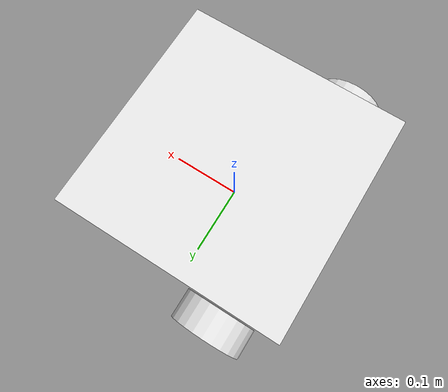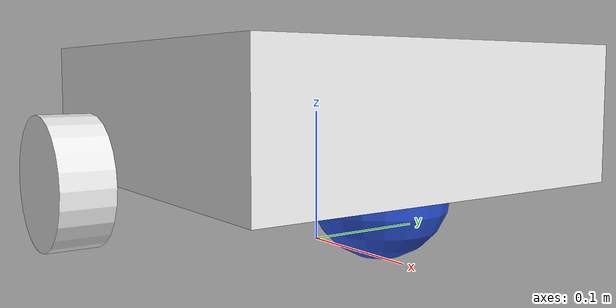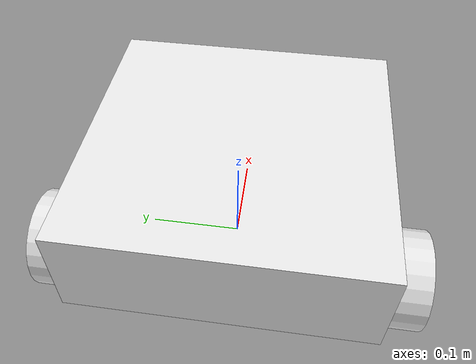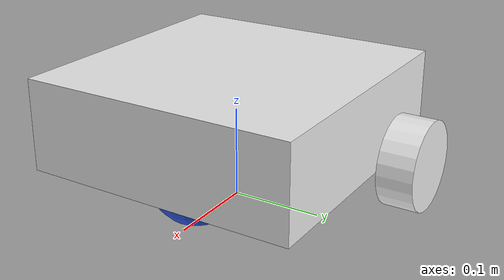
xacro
<?xml version="1.0"?>
<robot xmlns:xacro="http://www.ros.org/wiki/xacro">
    <xacro:property name="length" value="0.3"/>
    <xacro:property name="width" value="0.3"/>
    <xacro:property name="height" value="0.1"/>
    <xacro:property name="wheel_radius" value="0.05"/>
    <xacro:property name="wheel_width" value="0.04"/>
    <xacro:property name="caster_wheel_radius" value="0.05"/>

    <link name = "base_footprint"/>

    <link name = "base_link">
        <visual>
            <geometry>
                <box size = "${length} ${width} ${height}"/>
            </geometry>
            <material name = "white"/>
            <origin xyz = "0 0 ${wheel_radius}" rpy = "0 0 0"/>
        </visual>
        <collision>
            <geometry>
                <box size = "${length} ${width} ${height}"/>
            </geometry>
            <origin xyz = "0 0 ${wheel_radius}" rpy = "0 0 0"/>
        </collision>
        <xacro:box_inertia m = "0.5" x = "${length}" y = "${width}" z = "${height}"
                             o_xyz = "0 0 ${wheel_radius}" o_rpy = "0 0 0"/>
    </link>

    <link name ="left_wheel_link">
        <visual>
            <geometry>
                <cylinder radius = "${wheel_radius}" length = "${wheel_width}"/>
            </geometry>
            <material name = "white"/>
            <origin xyz = "0 0 0" rpy = "${pi/2} 0 0"/>
        </visual>
        <collision>
            <geometry>
                <cylinder radius = "${wheel_radius}" length = "${wheel_width}"/>
            </geometry>
            <origin xyz = "0 0 0" rpy = "${pi/2} 0 0"/>
        </collision>
        <xacro:cylinder_inertia m = "0.05" r = "${wheel_radius}" h = "${wheel_width}"
                             o_xyz = "0 0 0" o_rpy = "${pi/2} 0 0"/>
    </link>

    <gazebo reference="left_wheel_link">
        <material>Gazebo/White</material>
    </gazebo>

    <link name ="right_wheel_link">
        <visual>
            <geometry>
                <cylinder radius = "${wheel_radius}" length = "${wheel_width}"/>
            </geometry>
            <material name = "white"/>
            <origin xyz = "0 0 0" rpy = "${pi/2} 0 0"/>
        </visual>
        <collision>
            <geometry>
                <cylinder radius = "${wheel_radius}" length = "${wheel_width}"/>
            </geometry>
            <origin xyz = "0 0 0" rpy = "${pi/2} 0 0"/>
        </collision>
        <xacro:cylinder_inertia m = "0.05" r = "${wheel_radius}" h = "${wheel_width}"
                             o_xyz = "0 0 0" o_rpy = "${pi/2} 0 0"/>
    </link>

    <gazebo reference="right_wheel_link">
        <material>Gazebo/White</material>
    </gazebo>

    <link name ="caster_wheel_link">
        <visual>
            <geometry>
                <sphere radius = "${caster_wheel_radius}"/>
            </geometry>
            <material name = "blue"/>
            <origin xyz = "0 0 ${-wheel_radius + caster_wheel_radius}" rpy = "0 0 0"/>
        </visual>
        <collision>
            <geometry>
                <sphere radius = "${caster_wheel_radius}"/>
            </geometry>
            <origin xyz = "0 0 ${-wheel_radius + caster_wheel_radius}" rpy = "0 0 0"/>
        </collision>
        <xacro:sphere_inertia m = "0.01" r = "${caster_wheel_radius}"
                             o_xyz = "0 0 ${caster_wheel_radius}" o_rpy = "0 0 0"/>
    </link>

    <gazebo reference="caster_wheel_link">
        <material>Gazebo/Blue</material>
        <mu1 value="0.001"/>
        <mu2 value="0.001"/>
    </gazebo>

    <joint name = "base_joint" type = "fixed">
        <parent link = "base_footprint"/>
        <child link = "base_link"/>
        <origin xyz = "0 0 ${wheel_radius}" rpy = "0 0 0"/>
    </joint>

    <joint name = "base_left_wheel_joint" type = "continuous">
        <parent link = "base_link"/>
        <child link = "left_wheel_link"/>
        <origin xyz = "${-length / 4} ${width / 2 + wheel_width / 2 + 0.01/4} 0" rpy = "0 0 0"/>
        <axis xyz = "0 1 0"/>
    </joint>

    <joint name = "base_right_wheel_joint" type = "continuous">
        <parent link = "base_link"/>
        <child link = "right_wheel_link"/>
        <origin xyz = "${-length / 4} ${-width / 2 - wheel_width / 2 - 0.01/4} 0" rpy = "0 0 0"/>
        <axis xyz = "0 1 0"/>
    </joint>

    <joint name = "base_caster_wheel_joint" type = "fixed">
        <parent link = "base_link"/>
        <child link = "caster_wheel_link"/>
        <origin xyz = "${length / 4} 0 0" rpy = "0 0 0"/>
        <axis xyz = "0 0 1"/>
    </joint>

</robot>
